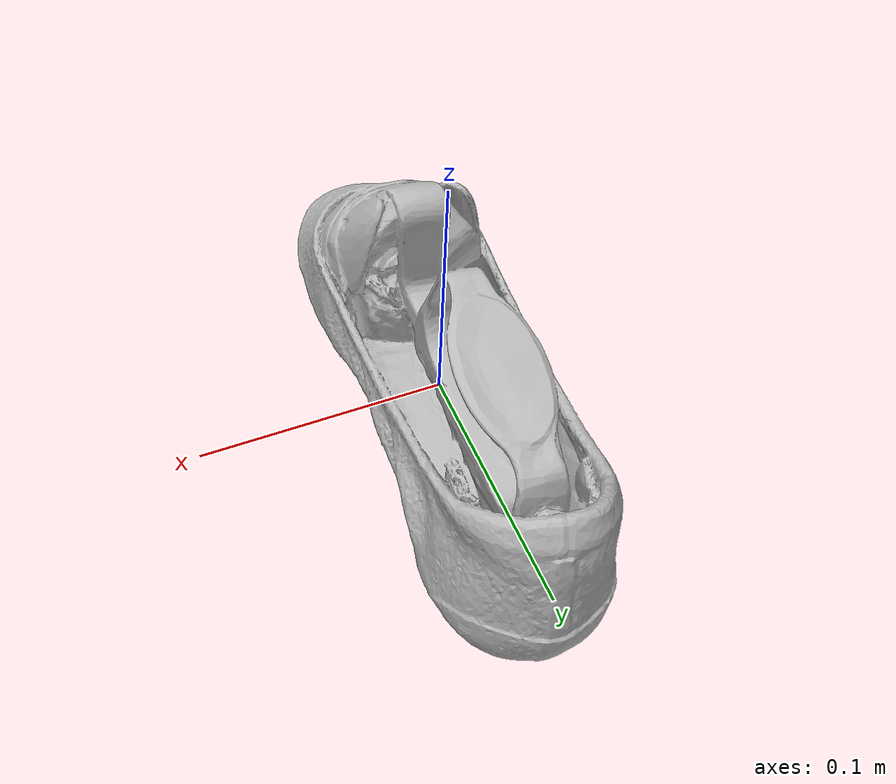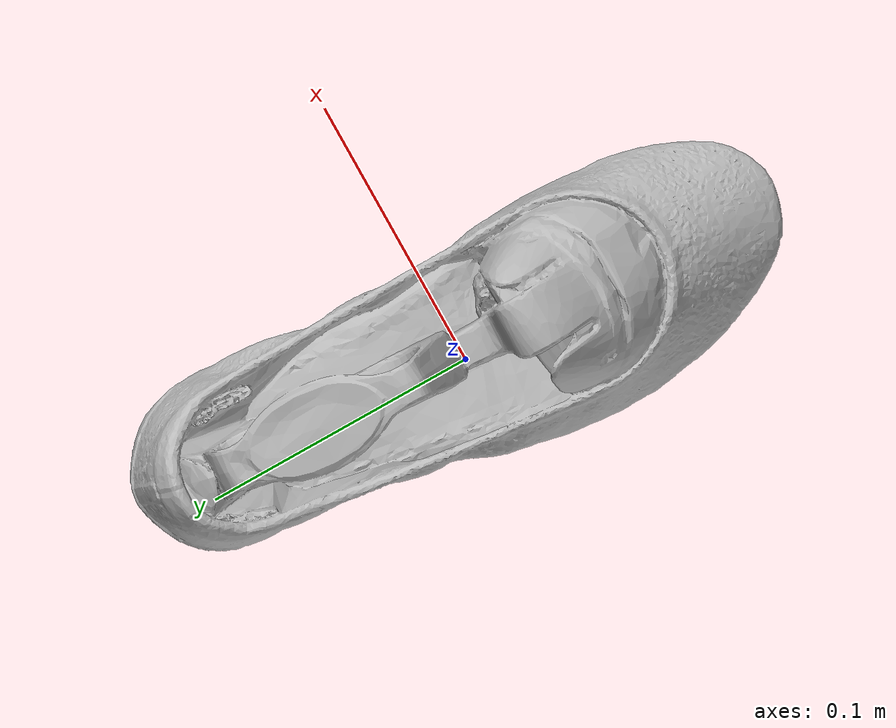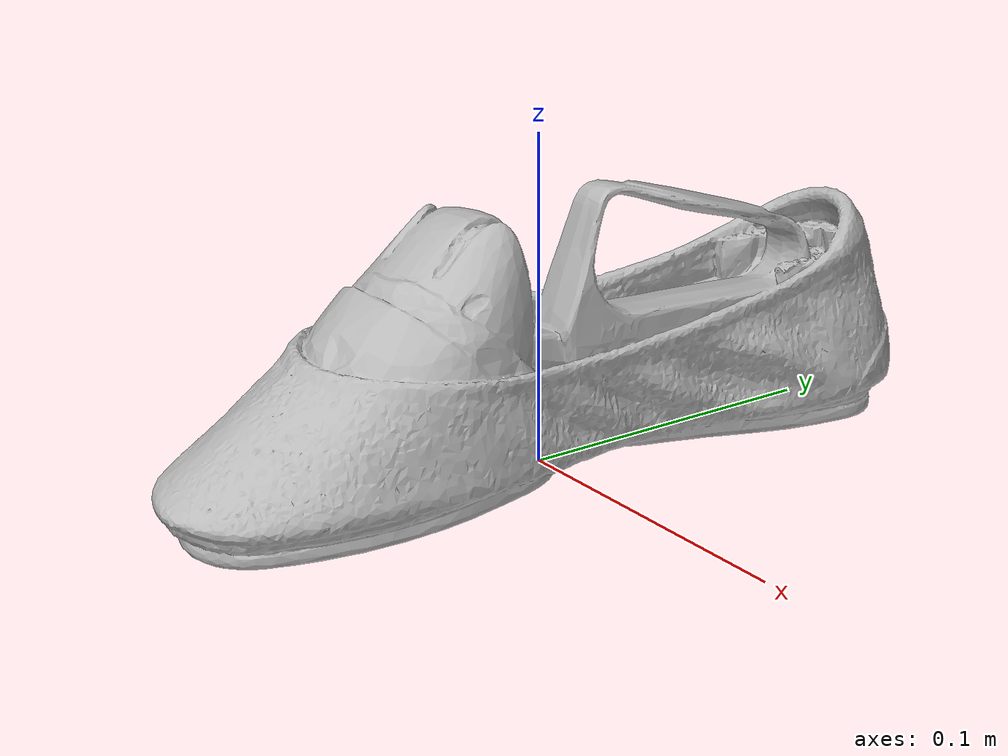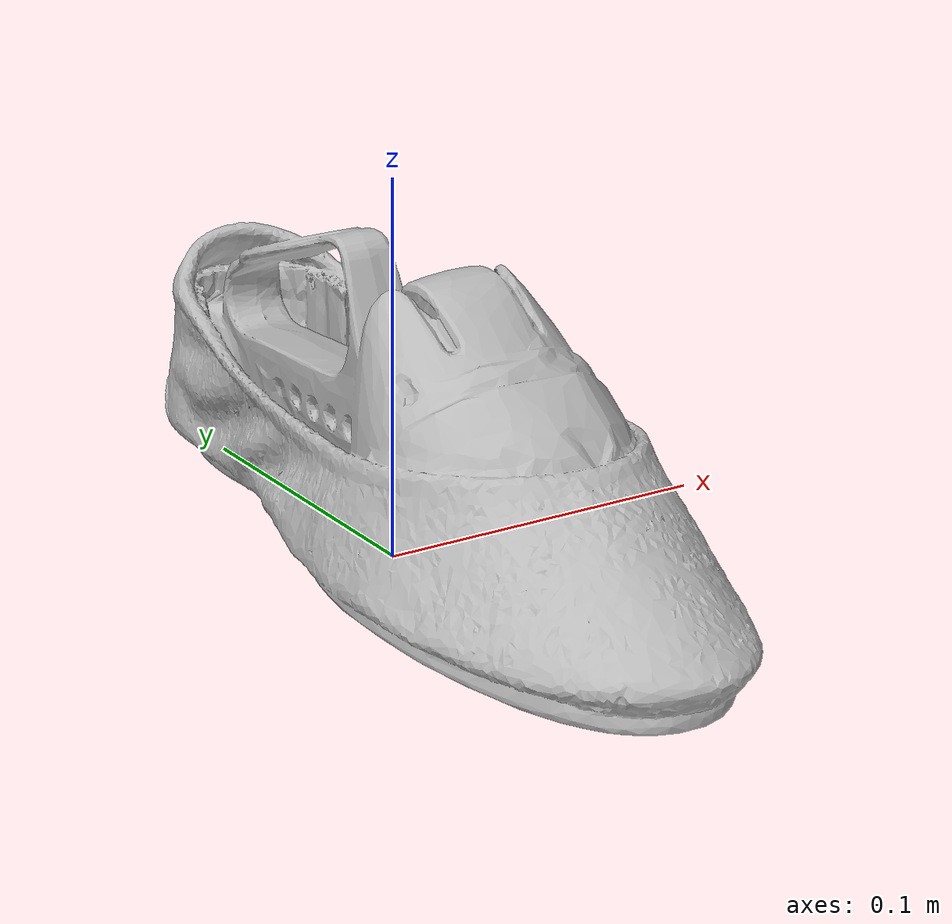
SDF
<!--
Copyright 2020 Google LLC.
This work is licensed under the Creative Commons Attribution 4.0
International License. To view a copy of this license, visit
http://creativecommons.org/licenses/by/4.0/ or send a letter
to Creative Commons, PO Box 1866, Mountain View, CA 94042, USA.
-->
<?xml version="1.0" ?>
<sdf version="1.6">
  <model name="Lovestruck_Tieks_Glittery_Rose_Gold_Italian_Leather_Ballet_Flats">
    <link name="link_0">
      <visual name="visual">
        <geometry>
          <mesh>
            <uri>meshes/model.obj</uri>
          </mesh>
        </geometry>
      </visual>
      <collision name="collision_0">
        <geometry>
          <mesh>
            <uri>meshes/model.obj</uri>
          </mesh>
        </geometry>
      </collision>
    </link>
  </model>
</sdf>
